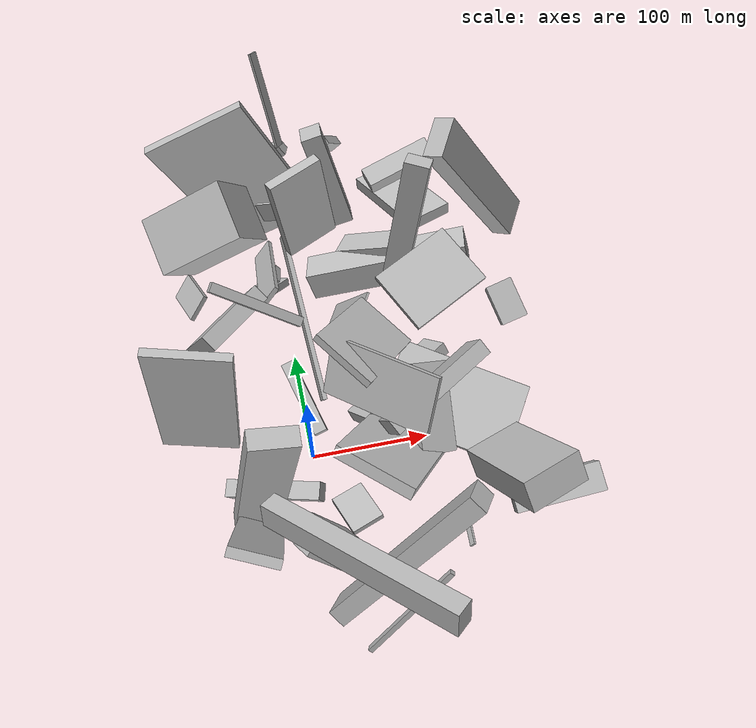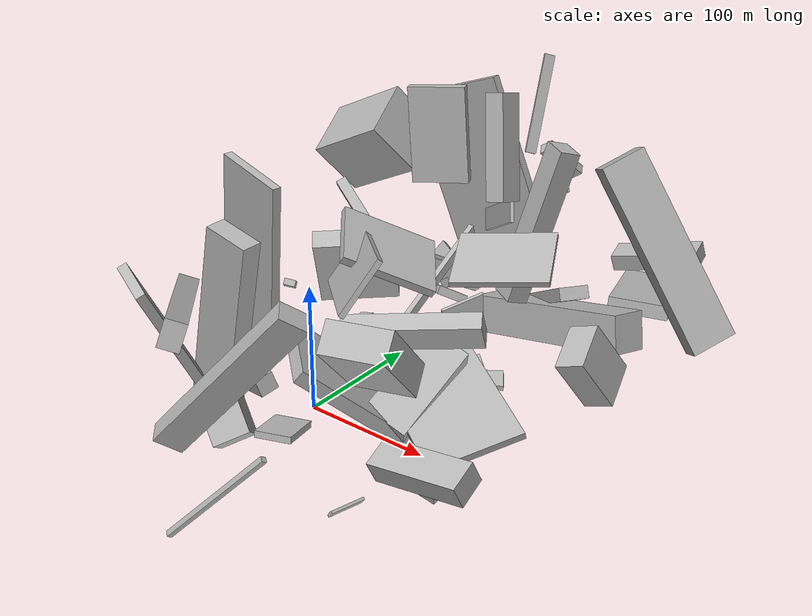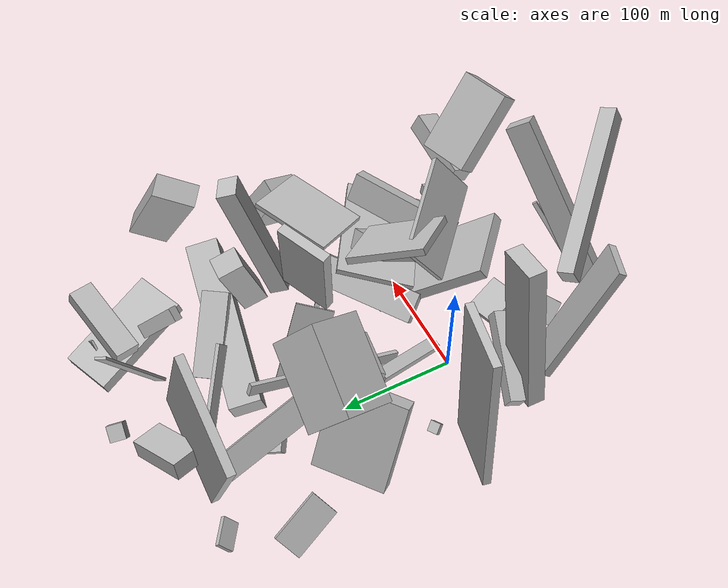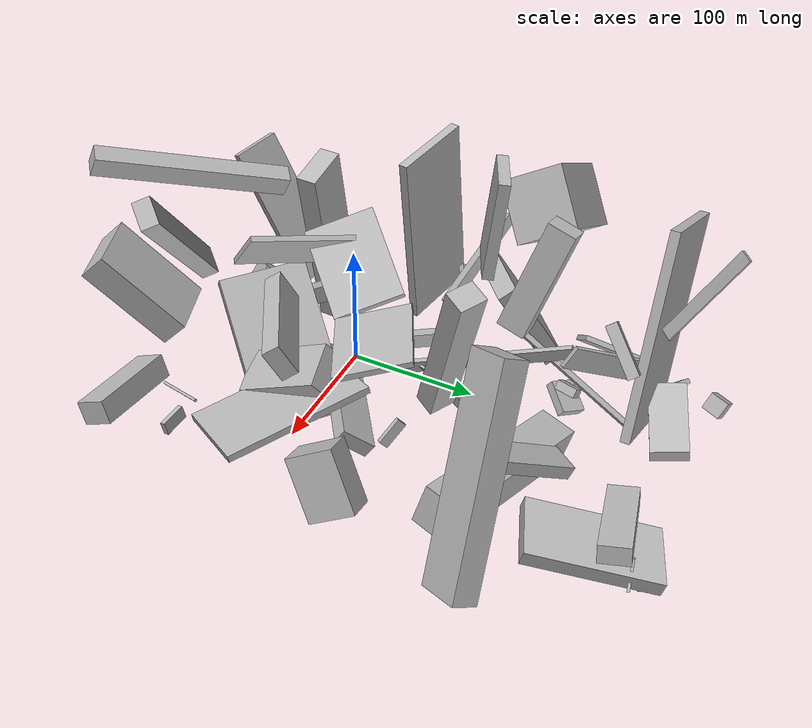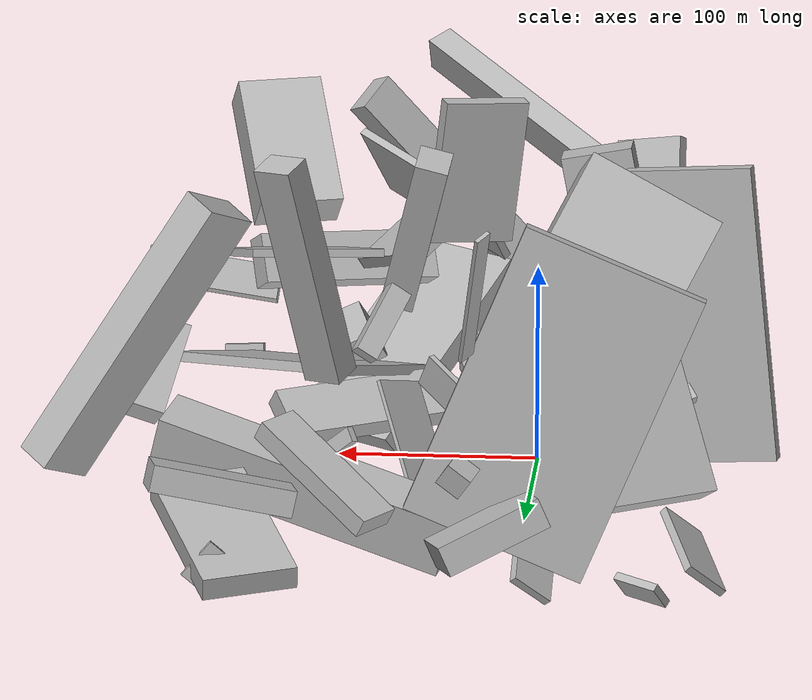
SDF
<sdf version="1.6">
 <world name="default">
  <model name="building_5">
   <static>0</static>
   <pose>166.29963931546428 -24.31965193423507 42.806507160785266 1.4587062912754336 0.22575708300513847 -2.1541432712912423</pose>
   <link name="link">
    <gravity>0</gravity>
    <pose>0 0 55.0 0 0 0</pose>
    <collision name="collision"><geometry><box><size>68 5 110</size></box></geometry></collision>
    <visual name="visual">
     <cast_shadows>0</cast_shadows>
     <geometry><box><size>68 5 110</size></box></geometry>
     <material>
      <script>
       <uri>model://HANNAS_wall/materials/scripts</uri>
       <uri>model://HANNAS_wall/materials/textures</uri>
       <name>vrc/HANNAS_wall</name>
      </script>
     </material>
    </visual>
   </link>
  </model>
  <model name="building_8">
   <static>0</static>
   <pose>41.30353054073305 -132.41653340783122 107.94400786044457 -2.607813706330499 -0.8533514266001915 0.25646923328573096</pose>
   <link name="link">
    <gravity>0</gravity>
    <pose>0 0 11.0 0 0 0</pose>
    <collision name="collision"><geometry><box><size>150 14 22</size></box></geometry></collision>
    <visual name="visual">
     <cast_shadows>0</cast_shadows>
     <geometry><box><size>150 14 22</size></box></geometry>
     <material>
      <script>
       <uri>model://HANNAS_wall/materials/scripts</uri>
       <uri>model://HANNAS_wall/materials/textures</uri>
       <name>vrc/HANNAS_wall</name>
      </script>
     </material>
    </visual>
   </link>
  </model>
  <model name="building_9">
   <static>0</static>
   <pose>26.15178590724839 116.82421287293187 147.3940000569861 -0.11068274155271524 -0.0792444836895755 0.4352526490848134</pose>
   <link name="link">
    <gravity>0</gravity>
    <pose>0 0 35.5 0 0 0</pose>
    <collision name="collision"><geometry><box><size>42 8 71</size></box></geometry></collision>
    <visual name="visual">
     <cast_shadows>0</cast_shadows>
     <geometry><box><size>42 8 71</size></box></geometry>
     <material>
      <script>
       <uri>model://HANNAS_wall/materials/scripts</uri>
       <uri>model://HANNAS_wall/materials/textures</uri>
       <name>vrc/HANNAS_wall</name>
      </script>
     </material>
    </visual>
   </link>
  </model>
  <model name="building_12">
   <static>0</static>
   <pose>-6.520405088961868 -77.17492732994309 29.772876379950986 0.5663911644474068 0.8044364382784117 -0.3394198197569569</pose>
   <link name="link">
    <gravity>0</gravity>
    <pose>0 0 11.0 0 0 0</pose>
    <collision name="collision"><geometry><box><size>38 27 22</size></box></geometry></collision>
    <visual name="visual">
     <cast_shadows>0</cast_shadows>
     <geometry><box><size>38 27 22</size></box></geometry>
     <material>
      <script>
       <uri>model://HANNAS_wall/materials/scripts</uri>
       <uri>model://HANNAS_wall/materials/textures</uri>
       <name>vrc/HANNAS_wall</name>
      </script>
     </material>
    </visual>
   </link>
  </model>
  <model name="building_17">
   <static>0</static>
   <pose>99.00438028899181 31.581031771062978 74.12906480237689 -2.108115493406043 -0.40126744923971264 -2.984121978935132</pose>
   <link name="link">
    <gravity>0</gravity>
    <pose>0 0 36.5 0 0 0</pose>
    <collision name="collision"><geometry><box><size>33 18 73</size></box></geometry></collision>
    <visual name="visual">
     <cast_shadows>0</cast_shadows>
     <geometry><box><size>33 18 73</size></box></geometry>
     <material>
      <script>
       <uri>model://HANNAS_wall/materials/scripts</uri>
       <uri>model://HANNAS_wall/materials/textures</uri>
       <name>vrc/HANNAS_wall</name>
      </script>
     </material>
    </visual>
   </link>
  </model>
  <model name="building_20">
   <static>0</static>
   <pose>66.04014127446314 237.0900105829487 123.93164978186473 0.6961059481824453 0.4749691082469154 -1.0595801647672962</pose>
   <link name="link">
    <gravity>0</gravity>
    <pose>0 0 18.5 0 0 0</pose>
    <collision name="collision"><geometry><box><size>8 11 37</size></box></geometry></collision>
    <visual name="visual">
     <cast_shadows>0</cast_shadows>
     <geometry><box><size>8 11 37</size></box></geometry>
     <material>
      <script>
       <uri>model://HANNAS_wall/materials/scripts</uri>
       <uri>model://HANNAS_wall/materials/textures</uri>
       <name>vrc/HANNAS_wall</name>
      </script>
     </material>
    </visual>
   </link>
  </model>
  <model name="building_21">
   <static>0</static>
   <pose>172.52710277176084 164.6042790900808 107.5862120504331 1.168915716080449 0.41591956409434117 2.4396420393022553</pose>
   <link name="link">
    <gravity>0</gravity>
    <pose>0 0 17.0 0 0 0</pose>
    <collision name="collision"><geometry><box><size>18 150 34</size></box></geometry></collision>
    <visual name="visual">
     <cast_shadows>0</cast_shadows>
     <geometry><box><size>18 150 34</size></box></geometry>
     <material>
      <script>
       <uri>model://HANNAS_wall/materials/scripts</uri>
       <uri>model://HANNAS_wall/materials/textures</uri>
       <name>vrc/HANNAS_wall</name>
      </script>
     </material>
    </visual>
   </link>
  </model>
  <model name="building_23">
   <static>0</static>
   <pose>94.46698053730597 76.94010614579932 32.953451613596116 -2.819256314067834 0.6802738318804274 -0.4839969857501051</pose>
   <link name="link">
    <gravity>0</gravity>
    <pose>0 0 4.0 0 0 0</pose>
    <collision name="collision"><geometry><box><size>21 4 8</size></box></geometry></collision>
    <visual name="visual">
     <cast_shadows>0</cast_shadows>
     <geometry><box><size>21 4 8</size></box></geometry>
     <material>
      <script>
       <uri>model://HANNAS_wall/materials/scripts</uri>
       <uri>model://HANNAS_wall/materials/textures</uri>
       <name>vrc/HANNAS_wall</name>
      </script>
     </material>
    </visual>
   </link>
  </model>
  <model name="building_24">
   <static>0</static>
   <pose>-79.30790828153852 158.46115077522464 20.308698644069047 2.090210067299913 -0.7769290529330102 3.0958314756266185</pose>
   <link name="link">
    <gravity>0</gravity>
    <pose>0 0 23.0 0 0 0</pose>
    <collision name="collision"><geometry><box><size>4 26 46</size></box></geometry></collision>
    <visual name="visual">
     <cast_shadows>0</cast_shadows>
     <geometry><box><size>4 26 46</size></box></geometry>
     <material>
      <script>
       <uri>model://HANNAS_wall/materials/scripts</uri>
       <uri>model://HANNAS_wall/materials/textures</uri>
       <name>vrc/HANNAS_wall</name>
      </script>
     </material>
    </visual>
   </link>
  </model>
  <model name="building_28">
   <static>0</static>
   <pose>-52.261825400239495 19.625794024722012 81.91001618558087 1.4669150647686426 0.0011002644229171294 -1.7857085148524698</pose>
   <link name="link">
    <gravity>0</gravity>
    <pose>0 0 32.0 0 0 0</pose>
    <collision name="collision"><geometry><box><size>7 150 64</size></box></geometry></collision>
    <visual name="visual">
     <cast_shadows>0</cast_shadows>
     <geometry><box><size>7 150 64</size></box></geometry>
     <material>
      <script>
       <uri>model://HANNAS_wall/materials/scripts</uri>
       <uri>model://HANNAS_wall/materials/textures</uri>
       <name>vrc/HANNAS_wall</name>
      </script>
     </material>
    </visual>
   </link>
  </model>
  <model name="building_29">
   <static>0</static>
   <pose>-42.3636002411799 146.69179338204282 137.64751133919503 0.5546674425060714 0.47076854257271544 -1.3419680814752857</pose>
   <link name="link">
    <gravity>0</gravity>
    <pose>0 0 23.0 0 0 0</pose>
    <collision name="collision"><geometry><box><size>45 70 46</size></box></geometry></collision>
    <visual name="visual">
     <cast_shadows>0</cast_shadows>
     <geometry><box><size>45 70 46</size></box></geometry>
     <material>
      <script>
       <uri>model://HANNAS_wall/materials/scripts</uri>
       <uri>model://HANNAS_wall/materials/textures</uri>
       <name>vrc/HANNAS_wall</name>
      </script>
     </material>
    </visual>
   </link>
  </model>
  <model name="building_31">
   <static>0</static>
   <pose>80.67059904556265 -131.9698000760895 60.571103251553474 -2.506998489690205 -0.46908347773046 2.5199186450086803</pose>
   <link name="link">
    <gravity>0</gravity>
    <pose>0 0 50.5 0 0 0</pose>
    <collision name="collision"><geometry><box><size>4 4 101</size></box></geometry></collision>
    <visual name="visual">
     <cast_shadows>0</cast_shadows>
     <geometry><box><size>4 4 101</size></box></geometry>
     <material>
      <script>
       <uri>model://HANNAS_wall/materials/scripts</uri>
       <uri>model://HANNAS_wall/materials/textures</uri>
       <name>vrc/HANNAS_wall</name>
      </script>
     </material>
    </visual>
   </link>
  </model>
  <model name="building_33">
   <static>0</static>
   <pose>56.576184402919324 -28.787532848103098 96.48672555799175 -1.4617217553823434 0.5139827953187076 -0.982608609802457</pose>
   <link name="link">
    <gravity>0</gravity>
    <pose>0 0 47.5 0 0 0</pose>
    <collision name="collision"><geometry><box><size>13 25 95</size></box></geometry></collision>
    <visual name="visual">
     <cast_shadows>0</cast_shadows>
     <geometry><box><size>13 25 95</size></box></geometry>
     <material>
      <script>
       <uri>model://HANNAS_wall/materials/scripts</uri>
       <uri>model://HANNAS_wall/materials/textures</uri>
       <name>vrc/HANNAS_wall</name>
      </script>
     </material>
    </visual>
   </link>
  </model>
  <model name="building_34">
   <static>0</static>
   <pose>64.43402831393007 196.68585581924083 28.339853494502115 0.06470640049518289 -1.0327633727330865 2.4750081207220638</pose>
   <link name="link">
    <gravity>0</gravity>
    <pose>0 0 36.5 0 0 0</pose>
    <collision name="collision"><geometry><box><size>10 23 73</size></box></geometry></collision>
    <visual name="visual">
     <cast_shadows>0</cast_shadows>
     <geometry><box><size>10 23 73</size></box></geometry>
     <material>
      <script>
       <uri>model://HANNAS_wall/materials/scripts</uri>
       <uri>model://HANNAS_wall/materials/textures</uri>
       <name>vrc/HANNAS_wall</name>
      </script>
     </material>
    </visual>
   </link>
  </model>
  <model name="building_39">
   <static>0</static>
   <pose>-50.76114627477821 108.16265215551384 50.25185868041362 1.031898963503408 0.04631644439681034 -2.45004476004433</pose>
   <link name="link">
    <gravity>0</gravity>
    <pose>0 0 7.5 0 0 0</pose>
    <collision name="collision"><geometry><box><size>63 79 15</size></box></geometry></collision>
    <visual name="visual">
     <cast_shadows>0</cast_shadows>
     <geometry><box><size>63 79 15</size></box></geometry>
     <material>
      <script>
       <uri>model://HANNAS_wall/materials/scripts</uri>
       <uri>model://HANNAS_wall/materials/textures</uri>
       <name>vrc/HANNAS_wall</name>
      </script>
     </material>
    </visual>
   </link>
  </model>
  <model name="building_43">
   <static>0</static>
   <pose>171.4734553053448 -77.65599706649971 71.174923315416 2.7615533448560945 1.1581462423929307 1.2293938048437218</pose>
   <link name="link">
    <gravity>0</gravity>
    <pose>0 0 11.0 0 0 0</pose>
    <collision name="collision"><geometry><box><size>17 68 22</size></box></geometry></collision>
    <visual name="visual">
     <cast_shadows>0</cast_shadows>
     <geometry><box><size>17 68 22</size></box></geometry>
     <material>
      <script>
       <uri>model://HANNAS_wall/materials/scripts</uri>
       <uri>model://HANNAS_wall/materials/textures</uri>
       <name>vrc/HANNAS_wall</name>
      </script>
     </material>
    </visual>
   </link>
  </model>
  <model name="building_46">
   <static>0</static>
   <pose>88.03080917048545 29.090400976745336 45.72619252838359 3.110208071872393 -0.8890027444257729 2.1998588723996653</pose>
   <link name="link">
    <gravity>0</gravity>
    <pose>0 0 13.5 0 0 0</pose>
    <collision name="collision"><geometry><box><size>11 97 27</size></box></geometry></collision>
    <visual name="visual">
     <cast_shadows>0</cast_shadows>
     <geometry><box><size>11 97 27</size></box></geometry>
     <material>
      <script>
       <uri>model://HANNAS_wall/materials/scripts</uri>
       <uri>model://HANNAS_wall/materials/textures</uri>
       <name>vrc/HANNAS_wall</name>
      </script>
     </material>
    </visual>
   </link>
  </model>
  <model name="building_53">
   <static>0</static>
   <pose>-51.830810470183096 -90.83838609651667 81.77836136711656 1.1313634903979597 -0.1954666098642272 2.750437122598807</pose>
   <link name="link">
    <gravity>0</gravity>
    <pose>0 0 3.5 0 0 0</pose>
    <collision name="collision"><geometry><box><size>36 119 7</size></box></geometry></collision>
    <visual name="visual">
     <cast_shadows>0</cast_shadows>
     <geometry><box><size>36 119 7</size></box></geometry>
     <material>
      <script>
       <uri>model://HANNAS_wall/materials/scripts</uri>
       <uri>model://HANNAS_wall/materials/textures</uri>
       <name>vrc/HANNAS_wall</name>
      </script>
     </material>
    </visual>
   </link>
  </model>
  <model name="building_54">
   <static>0</static>
   <pose>97.6096311518503 149.86537278041234 38.102786201015306 2.1228322564323543 -1.2393382826170296 2.385586749857466</pose>
   <link name="link">
    <gravity>0</gravity>
    <pose>0 0 14.0 0 0 0</pose>
    <collision name="collision"><geometry><box><size>29 150 28</size></box></geometry></collision>
    <visual name="visual">
     <cast_shadows>0</cast_shadows>
     <geometry><box><size>29 150 28</size></box></geometry>
     <material>
      <script>
       <uri>model://HANNAS_wall/materials/scripts</uri>
       <uri>model://HANNAS_wall/materials/textures</uri>
       <name>vrc/HANNAS_wall</name>
      </script>
     </material>
    </visual>
   </link>
  </model>
  <model name="building_57">
   <static>0</static>
   <pose>17.95143649006124 -126.6694606371305 140.09569378610257 0.745349753987204 1.1053633119149389 -1.6667616194537134</pose>
   <link name="link">
    <gravity>0</gravity>
    <pose>0 0 7.0 0 0 0</pose>
    <collision name="collision"><geometry><box><size>18 150 14</size></box></geometry></collision>
    <visual name="visual">
     <cast_shadows>0</cast_shadows>
     <geometry><box><size>18 150 14</size></box></geometry>
     <material>
      <script>
       <uri>model://HANNAS_wall/materials/scripts</uri>
       <uri>model://HANNAS_wall/materials/textures</uri>
       <name>vrc/HANNAS_wall</name>
      </script>
     </material>
    </visual>
   </link>
  </model>
  <model name="building_58">
   <static>0</static>
   <pose>91.80755377472981 -45.76474344731979 50.66419148279789 1.5287415096976253 -0.7023529443411162 -2.2733380345429373</pose>
   <link name="link">
    <gravity>0</gravity>
    <pose>0 0 33.0 0 0 0</pose>
    <collision name="collision"><geometry><box><size>117 10 66</size></box></geometry></collision>
    <visual name="visual">
     <cast_shadows>0</cast_shadows>
     <geometry><box><size>117 10 66</size></box></geometry>
     <material>
      <script>
       <uri>model://HANNAS_wall/materials/scripts</uri>
       <uri>model://HANNAS_wall/materials/textures</uri>
       <name>vrc/HANNAS_wall</name>
      </script>
     </material>
    </visual>
   </link>
  </model>
  <model name="building_59">
   <static>0</static>
   <pose>-55.04227118646406 230.00179857438184 12.287757902532794 1.6337172044305939 -0.7500733432357919 -2.2184087705915774</pose>
   <link name="link">
    <gravity>0</gravity>
    <pose>0 0 12.0 0 0 0</pose>
    <collision name="collision"><geometry><box><size>4 15 24</size></box></geometry></collision>
    <visual name="visual">
     <cast_shadows>0</cast_shadows>
     <geometry><box><size>4 15 24</size></box></geometry>
     <material>
      <script>
       <uri>model://HANNAS_wall/materials/scripts</uri>
       <uri>model://HANNAS_wall/materials/textures</uri>
       <name>vrc/HANNAS_wall</name>
      </script>
     </material>
    </visual>
   </link>
  </model>
  <model name="building_62">
   <static>0</static>
   <pose>47.940993149849426 27.38662737019972 129.71936036111128 0.31878581547302126 0.47263176509669746 0.8357936180809133</pose>
   <link name="link">
    <gravity>0</gravity>
    <pose>0 0 3.0 0 0 0</pose>
    <collision name="collision"><geometry><box><size>70 51 6</size></box></geometry></collision>
    <visual name="visual">
     <cast_shadows>0</cast_shadows>
     <geometry><box><size>70 51 6</size></box></geometry>
     <material>
      <script>
       <uri>model://HANNAS_wall/materials/scripts</uri>
       <uri>model://HANNAS_wall/materials/textures</uri>
       <name>vrc/HANNAS_wall</name>
      </script>
     </material>
    </visual>
   </link>
  </model>
  <model name="building_63">
   <static>0</static>
   <pose>0.27603358604562267 39.38345398371168 37.73022273186504 2.922388592740561 -0.25412816880336536 1.8461642530014102</pose>
   <link name="link">
    <gravity>0</gravity>
    <pose>0 0 5.0 0 0 0</pose>
    <collision name="collision"><geometry><box><size>66 11 10</size></box></geometry></collision>
    <visual name="visual">
     <cast_shadows>0</cast_shadows>
     <geometry><box><size>66 11 10</size></box></geometry>
     <material>
      <script>
       <uri>model://HANNAS_wall/materials/scripts</uri>
       <uri>model://HANNAS_wall/materials/textures</uri>
       <name>vrc/HANNAS_wall</name>
      </script>
     </material>
    </visual>
   </link>
  </model>
  <model name="building_66">
   <static>0</static>
   <pose>-22.802470374030648 229.26125307400028 100.76526924009967 1.5335930164606553 -1.1762662502063221 -3.1071329728821495</pose>
   <link name="link">
    <gravity>0</gravity>
    <pose>0 0 3.5 0 0 0</pose>
    <collision name="collision"><geometry><box><size>150 91 7</size></box></geometry></collision>
    <visual name="visual">
     <cast_shadows>0</cast_shadows>
     <geometry><box><size>150 91 7</size></box></geometry>
     <material>
      <script>
       <uri>model://HANNAS_wall/materials/scripts</uri>
       <uri>model://HANNAS_wall/materials/textures</uri>
       <name>vrc/HANNAS_wall</name>
      </script>
     </material>
    </visual>
   </link>
  </model>
  <model name="building_74">
   <static>0</static>
   <pose>-76.59958676292482 60.243764010496086 55.14996945302295 -2.4910583361628036 -0.17673668917765184 -2.6328666020113607</pose>
   <link name="link">
    <gravity>0</gravity>
    <pose>0 0 2.5 0 0 0</pose>
    <collision name="collision"><geometry><box><size>9 9 5</size></box></geometry></collision>
    <visual name="visual">
     <cast_shadows>0</cast_shadows>
     <geometry><box><size>9 9 5</size></box></geometry>
     <material>
      <script>
       <uri>model://HANNAS_wall/materials/scripts</uri>
       <uri>model://HANNAS_wall/materials/textures</uri>
       <name>vrc/HANNAS_wall</name>
      </script>
     </material>
    </visual>
   </link>
  </model>
  <model name="building_80">
   <static>0</static>
   <pose>129.59197346512863 267.17886244248314 64.6789226199824 1.9787326182755527 1.3146951737090589 0.6404173915037223</pose>
   <link name="link">
    <gravity>0</gravity>
    <pose>0 0 10.5 0 0 0</pose>
    <collision name="collision"><geometry><box><size>13 69 21</size></box></geometry></collision>
    <visual name="visual">
     <cast_shadows>0</cast_shadows>
     <geometry><box><size>13 69 21</size></box></geometry>
     <material>
      <script>
       <uri>model://HANNAS_wall/materials/scripts</uri>
       <uri>model://HANNAS_wall/materials/textures</uri>
       <name>vrc/HANNAS_wall</name>
      </script>
     </material>
    </visual>
   </link>
  </model>
  <model name="building_81">
   <static>0</static>
   <pose>144.02848465362948 -63.71839156855075 32.82139499330398 -1.8999803328778384 -1.360740939728252 -1.3240492769332304</pose>
   <link name="link">
    <gravity>0</gravity>
    <pose>0 0 10.0 0 0 0</pose>
    <collision name="collision"><geometry><box><size>10 4 20</size></box></geometry></collision>
    <visual name="visual">
     <cast_shadows>0</cast_shadows>
     <geometry><box><size>10 4 20</size></box></geometry>
     <material>
      <script>
       <uri>model://HANNAS_wall/materials/scripts</uri>
       <uri>model://HANNAS_wall/materials/textures</uri>
       <name>vrc/HANNAS_wall</name>
      </script>
     </material>
    </visual>
   </link>
  </model>
  <model name="building_85">
   <static>0</static>
   <pose>111.11859087297219 233.7965404278355 37.21217346216281 1.7480087075165385 -1.3319810256660958 1.7739560514399262</pose>
   <link name="link">
    <gravity>0</gravity>
    <pose>0 0 23.0 0 0 0</pose>
    <collision name="collision"><geometry><box><size>11 93 46</size></box></geometry></collision>
    <visual name="visual">
     <cast_shadows>0</cast_shadows>
     <geometry><box><size>11 93 46</size></box></geometry>
     <material>
      <script>
       <uri>model://HANNAS_wall/materials/scripts</uri>
       <uri>model://HANNAS_wall/materials/textures</uri>
       <name>vrc/HANNAS_wall</name>
      </script>
     </material>
    </visual>
   </link>
  </model>
  <model name="building_86">
   <static>0</static>
   <pose>10.68651113254453 110.84368282088225 49.05758865347526 -1.8930632551643003 -1.1323546081305704 -1.1468011343660807</pose>
   <link name="link">
    <gravity>0</gravity>
    <pose>0 0 2.0 0 0 0</pose>
    <collision name="collision"><geometry><box><size>10 150 4</size></box></geometry></collision>
    <visual name="visual">
     <cast_shadows>0</cast_shadows>
     <geometry><box><size>10 150 4</size></box></geometry>
     <material>
      <script>
       <uri>model://HANNAS_wall/materials/scripts</uri>
       <uri>model://HANNAS_wall/materials/textures</uri>
       <name>vrc/HANNAS_wall</name>
      </script>
     </material>
    </visual>
   </link>
  </model>
  <model name="building_89">
   <static>0</static>
   <pose>-58.30412805358293 -43.96439316985135 79.3202683654745 3.0833069885523887 -1.3800195889521174 0.03392743028743543</pose>
   <link name="link">
    <gravity>0</gravity>
    <pose>0 0 18.0 0 0 0</pose>
    <collision name="collision"><geometry><box><size>150 16 36</size></box></geometry></collision>
    <visual name="visual">
     <cast_shadows>0</cast_shadows>
     <geometry><box><size>150 16 36</size></box></geometry>
     <material>
      <script>
       <uri>model://HANNAS_wall/materials/scripts</uri>
       <uri>model://HANNAS_wall/materials/textures</uri>
       <name>vrc/HANNAS_wall</name>
      </script>
     </material>
    </visual>
   </link>
  </model>
  <model name="building_90">
   <static>0</static>
   <pose>112.66291486619494 76.29605529590627 125.10975455780742 -0.2379373086664046 0.10487400609046299 -2.6722480220806903</pose>
   <link name="link">
    <gravity>0</gravity>
    <pose>0 0 2.0 0 0 0</pose>
    <collision name="collision"><geometry><box><size>69 53 4</size></box></geometry></collision>
    <visual name="visual">
     <cast_shadows>0</cast_shadows>
     <geometry><box><size>69 53 4</size></box></geometry>
     <material>
      <script>
       <uri>model://HANNAS_wall/materials/scripts</uri>
       <uri>model://HANNAS_wall/materials/textures</uri>
       <name>vrc/HANNAS_wall</name>
      </script>
     </material>
    </visual>
   </link>
  </model>
  <model name="building_91">
   <static>0</static>
   <pose>174.58085471294916 78.34975745129786 63.327252066702705 1.1916508901984506 -0.45658867915406215 1.8372943687780499</pose>
   <link name="link">
    <gravity>0</gravity>
    <pose>0 0 11.0 0 0 0</pose>
    <collision name="collision"><geometry><box><size>34 46 22</size></box></geometry></collision>
    <visual name="visual">
     <cast_shadows>0</cast_shadows>
     <geometry><box><size>34 46 22</size></box></geometry>
     <material>
      <script>
       <uri>model://HANNAS_wall/materials/scripts</uri>
       <uri>model://HANNAS_wall/materials/textures</uri>
       <name>vrc/HANNAS_wall</name>
      </script>
     </material>
    </visual>
   </link>
  </model>
  <model name="building_92">
   <static>0</static>
   <pose>83.85068176991481 -41.065824067391816 143.31967793542333 1.8390578113786242 -0.6218704499586006 -2.486151966748341</pose>
   <link name="link">
    <gravity>0</gravity>
    <pose>0 0 44.0 0 0 0</pose>
    <collision name="collision"><geometry><box><size>4 45 88</size></box></geometry></collision>
    <visual name="visual">
     <cast_shadows>0</cast_shadows>
     <geometry><box><size>4 45 88</size></box></geometry>
     <material>
      <script>
       <uri>model://HANNAS_wall/materials/scripts</uri>
       <uri>model://HANNAS_wall/materials/textures</uri>
       <name>vrc/HANNAS_wall</name>
      </script>
     </material>
    </visual>
   </link>
  </model>
  <model name="building_94">
   <static>0</static>
   <pose>136.92139772007155 -96.64478975827387 125.38126975950084 0.0025765050675883474 -0.7915630665965652 -1.2450400455712047</pose>
   <link name="link">
    <gravity>0</gravity>
    <pose>0 0 11.0 0 0 0</pose>
    <collision name="collision"><geometry><box><size>72 43 22</size></box></geometry></collision>
    <visual name="visual">
     <cast_shadows>0</cast_shadows>
     <geometry><box><size>72 43 22</size></box></geometry>
     <material>
      <script>
       <uri>model://HANNAS_wall/materials/scripts</uri>
       <uri>model://HANNAS_wall/materials/textures</uri>
       <name>vrc/HANNAS_wall</name>
      </script>
     </material>
    </visual>
   </link>
  </model>
  <model name="building_97">
   <static>0</static>
   <pose>93.55366772586504 112.60014380282873 76.39475537278548 0.054137567042516224 0.3015956550707253 1.0948597075324833</pose>
   <link name="link">
    <gravity>0</gravity>
    <pose>0 0 59.0 0 0 0</pose>
    <collision name="collision"><geometry><box><size>16 20 118</size></box></geometry></collision>
    <visual name="visual">
     <cast_shadows>0</cast_shadows>
     <geometry><box><size>16 20 118</size></box></geometry>
     <material>
      <script>
       <uri>model://HANNAS_wall/materials/scripts</uri>
       <uri>model://HANNAS_wall/materials/textures</uri>
       <name>vrc/HANNAS_wall</name>
      </script>
     </material>
    </visual>
   </link>
  </model>
  <model name="building_99">
   <static>0</static>
   <pose>-4.663628454689877 177.8181699060371 45.29006187751745 2.4306716265340675 0.6258661739767227 -0.4876939482275105</pose>
   <link name="link">
    <gravity>0</gravity>
    <pose>0 0 11.5 0 0 0</pose>
    <collision name="collision"><geometry><box><size>4 123 23</size></box></geometry></collision>
    <visual name="visual">
     <cast_shadows>0</cast_shadows>
     <geometry><box><size>4 123 23</size></box></geometry>
     <material>
      <script>
       <uri>model://HANNAS_wall/materials/scripts</uri>
       <uri>model://HANNAS_wall/materials/textures</uri>
       <name>vrc/HANNAS_wall</name>
      </script>
     </material>
    </visual>
   </link>
  </model>
  <model name="building_100">
   <static>0</static>
   <pose>-0.6729483679253239 166.42597410543553 22.648900615441477 -2.1986958300483175 -0.967865795711943 1.5395733910052551</pose>
   <link name="link">
    <gravity>0</gravity>
    <pose>0 0 10.5 0 0 0</pose>
    <collision name="collision"><geometry><box><size>7 25 21</size></box></geometry></collision>
    <visual name="visual">
     <cast_shadows>0</cast_shadows>
     <geometry><box><size>7 25 21</size></box></geometry>
     <material>
      <script>
       <uri>model://HANNAS_wall/materials/scripts</uri>
       <uri>model://HANNAS_wall/materials/textures</uri>
       <name>vrc/HANNAS_wall</name>
      </script>
     </material>
    </visual>
   </link>
  </model>
  <model name="building_110">
   <static>0</static>
   <pose>2.6534250435036024 264.96623714160074 44.82382984941691 1.9378654324385172 -1.1596692085191975 -0.0050530596283707985</pose>
   <link name="link">
    <gravity>0</gravity>
    <pose>0 0 13.5 0 0 0</pose>
    <collision name="collision"><geometry><box><size>15 53 27</size></box></geometry></collision>
    <visual name="visual">
     <cast_shadows>0</cast_shadows>
     <geometry><box><size>15 53 27</size></box></geometry>
     <material>
      <script>
       <uri>model://HANNAS_wall/materials/scripts</uri>
       <uri>model://HANNAS_wall/materials/textures</uri>
       <name>vrc/HANNAS_wall</name>
      </script>
     </material>
    </visual>
   </link>
  </model>
  <model name="building_112">
   <static>0</static>
   <pose>8.319585360924616 81.18224588927346 87.97671532986055 -0.6411527870188358 0.8488369947603902 2.0814103398707586</pose>
   <link name="link">
    <gravity>0</gravity>
    <pose>0 0 40.0 0 0 0</pose>
    <collision name="collision"><geometry><box><size>7 8 80</size></box></geometry></collision>
    <visual name="visual">
     <cast_shadows>0</cast_shadows>
     <geometry><box><size>7 8 80</size></box></geometry>
     <material>
      <script>
       <uri>model://HANNAS_wall/materials/scripts</uri>
       <uri>model://HANNAS_wall/materials/textures</uri>
       <name>vrc/HANNAS_wall</name>
      </script>
     </material>
    </visual>
   </link>
  </model>
  <model name="building_114">
   <static>0</static>
   <pose>26.091417148684187 -59.10094500701566 25.331015701412333 -3.1271712625167702 -0.22801058137738042 -1.235758555060782</pose>
   <link name="link">
    <gravity>0</gravity>
    <pose>0 0 2.5 0 0 0</pose>
    <collision name="collision"><geometry><box><size>35 27 5</size></box></geometry></collision>
    <visual name="visual">
     <cast_shadows>0</cast_shadows>
     <geometry><box><size>35 27 5</size></box></geometry>
     <material>
      <script>
       <uri>model://HANNAS_wall/materials/scripts</uri>
       <uri>model://HANNAS_wall/materials/textures</uri>
       <name>vrc/HANNAS_wall</name>
      </script>
     </material>
    </visual>
   </link>
  </model>
  <model name="building_116">
   <static>0</static>
   <pose>51.850156844212435 111.55474640968029 37.75546463259584 0.4825273376490561 -0.9877503393758058 -0.9688304860164481</pose>
   <link name="link">
    <gravity>0</gravity>
    <pose>0 0 1.0 0 0 0</pose>
    <collision name="collision"><geometry><box><size>72 33 2</size></box></geometry></collision>
    <visual name="visual">
     <cast_shadows>0</cast_shadows>
     <geometry><box><size>72 33 2</size></box></geometry>
     <material>
      <script>
       <uri>model://HANNAS_wall/materials/scripts</uri>
       <uri>model://HANNAS_wall/materials/textures</uri>
       <name>vrc/HANNAS_wall</name>
      </script>
     </material>
    </visual>
   </link>
  </model>
  <model name="building_120">
   <static>0</static>
   <pose>19.571673907901605 200.11891087574065 77.15645205445796 -0.1436319475230479 -0.5285568352356839 -0.625474626390464</pose>
   <link name="link">
    <gravity>0</gravity>
    <pose>0 0 9.0 0 0 0</pose>
    <collision name="collision"><geometry><box><size>70 3 18</size></box></geometry></collision>
    <visual name="visual">
     <cast_shadows>0</cast_shadows>
     <geometry><box><size>70 3 18</size></box></geometry>
     <material>
      <script>
       <uri>model://HANNAS_wall/materials/scripts</uri>
       <uri>model://HANNAS_wall/materials/textures</uri>
       <name>vrc/HANNAS_wall</name>
      </script>
     </material>
    </visual>
   </link>
  </model>
  <model name="building_121">
   <static>0</static>
   <pose>-33.629749878866654 -28.3642531877311 34.12329657188705 1.8296291882786238 -0.2733476572012012 -0.33927403230377573</pose>
   <link name="link">
    <gravity>0</gravity>
    <pose>0 0 7.0 0 0 0</pose>
    <collision name="collision"><geometry><box><size>80 13 14</size></box></geometry></collision>
    <visual name="visual">
     <cast_shadows>0</cast_shadows>
     <geometry><box><size>80 13 14</size></box></geometry>
     <material>
      <script>
       <uri>model://HANNAS_wall/materials/scripts</uri>
       <uri>model://HANNAS_wall/materials/textures</uri>
       <name>vrc/HANNAS_wall</name>
      </script>
     </material>
    </visual>
   </link>
  </model>
  <model name="building_123">
   <static>0</static>
   <pose>16.639598237023073 277.89368581257986 82.18053210520051 -1.908383977636954 0.9110640425888404 -0.5511753474787846</pose>
   <link name="link">
    <gravity>0</gravity>
    <pose>0 0 6.5 0 0 0</pose>
    <collision name="collision"><geometry><box><size>12 13 13</size></box></geometry></collision>
    <visual name="visual">
     <cast_shadows>0</cast_shadows>
     <geometry><box><size>12 13 13</size></box></geometry>
     <material>
      <script>
       <uri>model://HANNAS_wall/materials/scripts</uri>
       <uri>model://HANNAS_wall/materials/textures</uri>
       <name>vrc/HANNAS_wall</name>
      </script>
     </material>
    </visual>
   </link>
  </model>
  <model name="building_128">
   <static>0</static>
   <pose>-1.881121941086943 173.33799104279552 34.07452250562884 2.2072610474146592 -0.06602099535864309 -1.758023571557604</pose>
   <link name="link">
    <gravity>0</gravity>
    <pose>0 0 5.5 0 0 0</pose>
    <collision name="collision"><geometry><box><size>16 7 11</size></box></geometry></collision>
    <visual name="visual">
     <cast_shadows>0</cast_shadows>
     <geometry><box><size>16 7 11</size></box></geometry>
     <material>
      <script>
       <uri>model://HANNAS_wall/materials/scripts</uri>
       <uri>model://HANNAS_wall/materials/textures</uri>
       <name>vrc/HANNAS_wall</name>
      </script>
     </material>
    </visual>
   </link>
  </model>
  <model name="building_131">
   <static>0</static>
   <pose>131.04462057367775 269.34306169623676 37.24629584561477 2.407571682100195 -0.02230731167303869 1.7706394624775286</pose>
   <link name="link">
    <gravity>0</gravity>
    <pose>0 0 10.5 0 0 0</pose>
    <collision name="collision"><geometry><box><size>2 12 21</size></box></geometry></collision>
    <visual name="visual">
     <cast_shadows>0</cast_shadows>
     <geometry><box><size>2 12 21</size></box></geometry>
     <material>
      <script>
       <uri>model://HANNAS_wall/materials/scripts</uri>
       <uri>model://HANNAS_wall/materials/textures</uri>
       <name>vrc/HANNAS_wall</name>
      </script>
     </material>
    </visual>
   </link>
  </model>
  <model name="building_132">
   <static>0</static>
   <pose>109.99007376458779 -90.30569623398426 14.444823537083328 2.9050879236683884 -0.9489490894642464 0.10501468921545357</pose>
   <link name="link">
    <gravity>0</gravity>
    <pose>0 0 1.0 0 0 0</pose>
    <collision name="collision"><geometry><box><size>5 29 2</size></box></geometry></collision>
    <visual name="visual">
     <cast_shadows>0</cast_shadows>
     <geometry><box><size>5 29 2</size></box></geometry>
     <material>
      <script>
       <uri>model://HANNAS_wall/materials/scripts</uri>
       <uri>model://HANNAS_wall/materials/textures</uri>
       <name>vrc/HANNAS_wall</name>
      </script>
     </material>
    </visual>
   </link>
  </model>
  <model name="building_134">
   <static>0</static>
   <pose>136.8362529994347 276.48897989598925 17.646102245638023 0.4990316791240683 0.057702456753918906 -1.1251692474206854</pose>
   <link name="link">
    <gravity>0</gravity>
    <pose>0 0 1.5 0 0 0</pose>
    <collision name="collision"><geometry><box><size>2 10 3</size></box></geometry></collision>
    <visual name="visual">
     <cast_shadows>0</cast_shadows>
     <geometry><box><size>2 10 3</size></box></geometry>
     <material>
      <script>
       <uri>model://HANNAS_wall/materials/scripts</uri>
       <uri>model://HANNAS_wall/materials/textures</uri>
       <name>vrc/HANNAS_wall</name>
      </script>
     </material>
    </visual>
   </link>
  </model>
  <model name="building_141">
   <static>0</static>
   <pose>57.03038250764564 150.9281061153182 127.40156887202119 -0.2875265655604387 -0.24524827302306684 0.005043575232139553</pose>
   <link name="link">
    <gravity>0</gravity>
    <pose>0 0 40.0 0 0 0</pose>
    <collision name="collision"><geometry><box><size>16 20 80</size></box></geometry></collision>
    <visual name="visual">
     <cast_shadows>0</cast_shadows>
     <geometry><box><size>16 20 80</size></box></geometry>
     <material>
      <script>
       <uri>model://HANNAS_wall/materials/scripts</uri>
       <uri>model://HANNAS_wall/materials/textures</uri>
       <name>vrc/HANNAS_wall</name>
      </script>
     </material>
    </visual>
   </link>
  </model>
  <model name="building_146">
   <static>0</static>
   <pose>15.365104432981434 265.079995774718 159.0667420611294 0.8626136552072055 1.0530658913936775 -1.305267013129399</pose>
   <link name="link">
    <gravity>0</gravity>
    <pose>0 0 4.5 0 0 0</pose>
    <collision name="collision"><geometry><box><size>80 2 9</size></box></geometry></collision>
    <visual name="visual">
     <cast_shadows>0</cast_shadows>
     <geometry><box><size>80 2 9</size></box></geometry>
     <material>
      <script>
       <uri>model://HANNAS_wall/materials/scripts</uri>
       <uri>model://HANNAS_wall/materials/textures</uri>
       <name>vrc/HANNAS_wall</name>
      </script>
     </material>
    </visual>
   </link>
  </model>
 </world>
</sdf>
